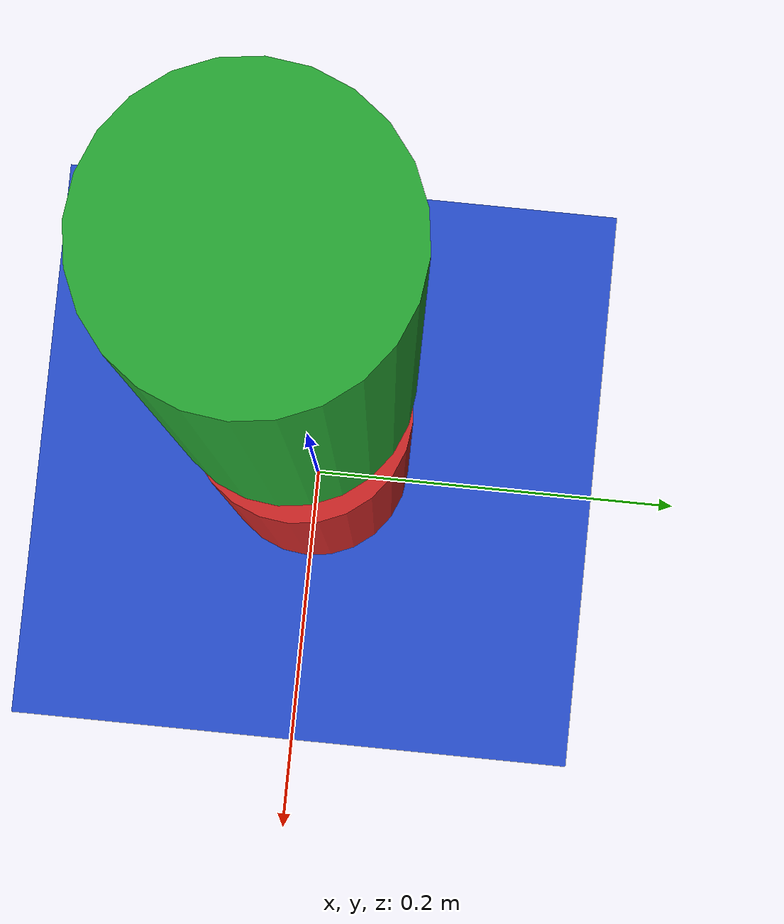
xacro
<?xml version="1.0"?>
<robot name="simple_arm" xmlns:xacro="http://www.ros.org/wiki/xacro">

  <link name="base_link">
    <visual>
      <geometry>
        <box size="0.3 0.3 0.1"/>
      </geometry>
      <material name="blue"/>
    </visual>
  </link>

  <link name="link1">
    <visual>
      <geometry>
        <cylinder radius="0.05" length="0.5"/>
      </geometry>
      <material name="red"/>
    </visual>
  </link>

  <link name="link2">
    <visual>
      <geometry>
        <cylinder radius="0.05" length="0.3"/>
      </geometry>
      <material name="green"/>
    </visual>
  </link>

  <joint name="joint1" type="revolute">
    <parent link="base_link"/>
    <child link="link1"/>
    <origin xyz="0 0 0.05" rpy="0 0 0"/>
    <axis xyz="0 0 1"/>
    <limit lower="-1.57" upper="1.57" effort="5" velocity="1"/>
  </joint>

  <joint name="joint2" type="revolute">
    <parent link="link1"/>
    <child link="link2"/>
    <origin xyz="0 0 0.5" rpy="0 0 0"/>
    <axis xyz="0 1 0"/>
    <limit lower="-1.57" upper="1.57" effort="5" velocity="1"/>
  </joint>

</robot>
